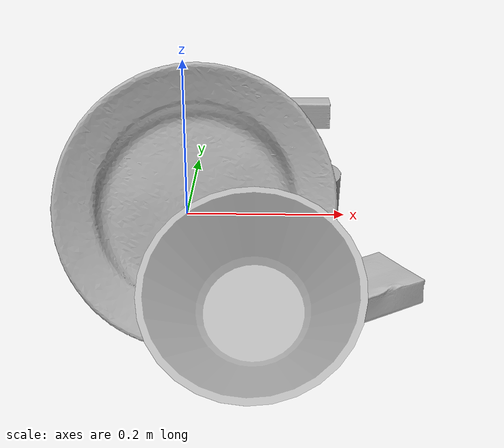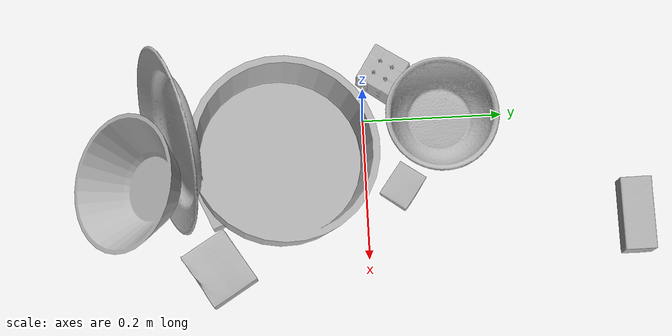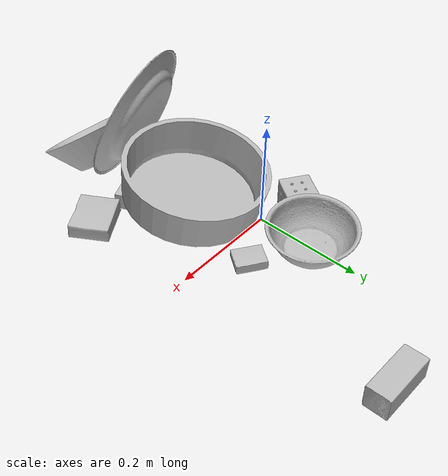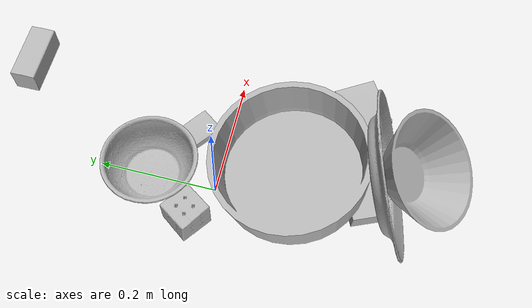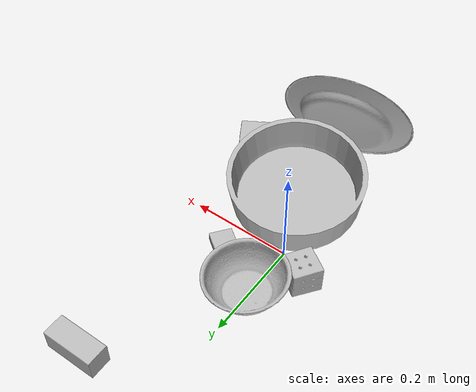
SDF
<sdf version="1.4">
  <world name="default">
    <light name="light1" type="point">
      <pose>0 0 1 0 0 0</pose>
      <diffuse>3 3 3 1</diffuse>
      <specular>3 3 3 1</specular>
    </light>
    <light name="light2" type="point">
      <pose>0 0.5 2 0 0 0</pose>
      <diffuse>1 1 1 1</diffuse>
      <specular>1 1 1 1</specular>
    </light>
    <light name="light3" type="point">
      <pose>0 0.5 2 0 0 0</pose>
      <diffuse>3 3 3 1</diffuse>
      <specular>3 3 3 1</specular>
    </light>
    <scene>
      <ambient>0.7 0.7 0.7</ambient>
    </scene>
    <model name="box1">
      <link name="link_box1">
        <collision name="default">
          <geometry>
            <mesh>
              <uri>model://gelatin_box/collision_meshes/collision.obj</uri>
              <scale>1.0 1.0 1.0</scale>
            </mesh>
          </geometry>
          <surface>
            <friction>
              <ode>
                <mu>0.5</mu>
                <mu2>0.5</mu2>
              </ode>
            </friction>
          <contact>
        <ode>
            <max_vel>0</max_vel>
            <min_depth>0.0001</min_depth>
            <kp>1e8</kp>
        </ode>
    </contact></surface>
        </collision>
        <visual name="default">
          <geometry>
            <mesh>
              <uri>model://gelatin_box/visual_meshes/visual.dae</uri>
              <scale>1.0 1.0 1.0</scale>
            </mesh>
          </geometry>
        </visual>
        <inertial>
          <mass>0.1979130208492279</mass>
          <pose>0.0004319618456065655 0.00011156871914863586 -0.0003640321083366871 -0.0010503722055948273 -0.004755818222760974 0.016440559471883928</pose>
          <inertia>
            <ixx>0.00013971045</ixx>
            <iyy>9.9794444e-05</iyy>
            <izz>0.00021267045</izz>
            <ixy>0</ixy>
            <ixz>0</ixz>
            <iyz>0</iyz>
          </inertia>
        </inertial>
      </link>
      <pose>0.20424510538578033 -0.21176397800445557 0.015168317593634129 0.005596602167692064 -0.007303778715009675 -1.0251202529471215</pose>
    </model>
    <model name="box11">
      <link name="link_box11">
        <collision name="default">
          <geometry>
            <mesh>
              <uri>model://sugar_box/collision_meshes/collision.obj</uri>
              <scale>0.5 0.5 0.5</scale>
            </mesh>
          </geometry>
          <surface>
            <friction>
              <ode>
                <mu>0.5</mu>
                <mu2>0.5</mu2>
              </ode>
            </friction>
          <contact>
        <ode>
            <max_vel>0</max_vel>
            <min_depth>0.0001</min_depth>
            <kp>1e8</kp>
        </ode>
    </contact></surface>
        </collision>
        <visual name="default">
          <geometry>
            <mesh>
              <uri>model://sugar_box/visual_meshes/visual.dae</uri>
              <scale>0.5 0.5 0.5</scale>
            </mesh>
          </geometry>
        </visual>
        <inertial>
          <mass>0.10992158949375153</mass>
          <pose>0.0005171863595023751 1.924554817378521e-05 -0.00018182402709499002 -0.00040462650409139634 0.0010506636387973133 0.002615378555960767</pose>
          <inertia>
            <ixx>2.2896586e-05</ixx>
            <iyy>7.400649e-05</iyy>
            <izz>8.8594585e-05</izz>
            <ixy>0</ixy>
            <ixz>0</ixz>
            <iyz>0</iyz>
          </inertia>
        </inertial>
      </link>
      <pose>0.07044650614261627 -0.16406066715717316 0.012057025916874409 -0.06807651903360216 -0.006778418688273786 0.4704140461810547</pose>
    </model>
    <model name="box2">
      <link name="link_box2">
        <collision name="default">
          <geometry>
            <mesh>
              <uri>model://jenga/collision_meshes/collision.obj</uri>
              <scale>1.0 1.0 1.0</scale>
            </mesh>
          </geometry>
          <surface>
            <friction>
              <ode>
                <mu>0.5</mu>
                <mu2>0.5</mu2>
              </ode>
            </friction>
          <contact>
        <ode>
            <max_vel>0</max_vel>
            <min_depth>0.0001</min_depth>
            <kp>1e8</kp>
        </ode>
    </contact></surface>
        </collision>
        <visual name="default">
          <geometry>
            <mesh>
              <uri>model://jenga/visual_meshes/visual.dae</uri>
              <scale>1.0 1.0 1.0</scale>
            </mesh>
          </geometry>
        </visual>
        <inertial>
          <mass>0.12651896476745605</mass>
          <pose>-2.502855807051674e-07 -0.00010250010382151231 -4.0923401684267446e-05 0.0 -7.34215461761844e-07 0.0</pose>
          <inertia>
            <ixx>3.5010868e-05</ixx>
            <iyy>0.00023723267</iyy>
            <izz>0.00025326604</izz>
            <ixy>0</ixy>
            <ixz>0</ixz>
            <iyz>0</iyz>
          </inertia>
        </inertial>
      </link>
      <pose>0.07107705622911453 -0.2242247462272644 0.014993858523666859 0.0005358474115784801 3.289969795084348e-05 0.4114633194264771</pose>
    </model>
    <model name="box21">
      <link name="link_box21">
        <collision name="default">
          <geometry>
            <mesh>
              <uri>model://wood_block/collision_meshes/collision.obj</uri>
              <scale>0.5 0.5 0.5</scale>
            </mesh>
          </geometry>
          <surface>
            <friction>
              <ode>
                <mu>0.5</mu>
                <mu2>0.5</mu2>
              </ode>
            </friction>
          <contact>
        <ode>
            <max_vel>0</max_vel>
            <min_depth>0.0001</min_depth>
            <kp>1e8</kp>
        </ode>
    </contact></surface>
        </collision>
        <visual name="default">
          <geometry>
            <mesh>
              <uri>model://wood_block/visual_meshes/visual.dae</uri>
              <scale>0.5 0.5 0.5</scale>
            </mesh>
          </geometry>
        </visual>
        <inertial>
          <mass>0.17952100932598114</mass>
          <pose>-2.906657982748584e-06 -0.00028540476341731846 0.00013204291462898254 -0.052208472466385096 -0.005192695659959234 -0.0068613786899108485</pose>
          <inertia>
            <ixx>6.0056565e-05</ixx>
            <iyy>0.0001897187</iyy>
            <izz>0.00018900905</izz>
            <ixy>0</ixy>
            <ixz>0</ixz>
            <iyz>0</iyz>
          </inertia>
        </inertial>
      </link>
      <pose>0.15925537049770355 0.377961128950119 0.022629262879490852 -0.00520844033220294 0.005718670183622919 0.004857834704999453</pose>
    </model>
    <model name="box3">
      <link name="link_box3">
        <collision name="default">
          <geometry>
            <mesh>
              <uri>model://rubiks_cube/collision_meshes/collision.obj</uri>
              <scale>1.0 1.0 1.0</scale>
            </mesh>
          </geometry>
          <surface>
            <friction>
              <ode>
                <mu>0.5</mu>
                <mu2>0.5</mu2>
              </ode>
            </friction>
          <contact>
        <ode>
            <max_vel>0</max_vel>
            <min_depth>0.0001</min_depth>
            <kp>1e8</kp>
        </ode>
    </contact></surface>
        </collision>
        <visual name="default">
          <geometry>
            <mesh>
              <uri>model://rubiks_cube/visual_meshes/visual.dae</uri>
              <scale>1.0 1.0 1.0</scale>
            </mesh>
          </geometry>
        </visual>
        <inertial>
          <mass>0.2539031207561493</mass>
          <pose>2.6721041649580002e-05 5.2569666877388954e-05 -7.264316082000732e-06 -0.05467208428881645 -0.09814040742269707 -0.034455380154792534</pose>
          <inertia>
            <ixx>0.00014029852</ixx>
            <iyy>0.00013964424</iyy>
            <izz>0.00014146113</izz>
            <ixy>0</ixy>
            <ixz>0</ixz>
            <iyz>0</iyz>
          </inertia>
        </inertial>
      </link>
      <pose>-0.06023848429322243 0.03213268518447876 0.02867894060909748 -5.363533073520409e-06 -2.761413383877553e-06 2.548273706752866</pose>
    </model>
    <model name="box31">
      <link name="link_box31">
        <collision name="default">
          <geometry>
            <mesh>
              <uri>model://pudding_box/collision_meshes/collision.obj</uri>
              <scale>0.5 0.5 0.5</scale>
            </mesh>
          </geometry>
          <surface>
            <friction>
              <ode>
                <mu>0.5</mu>
                <mu2>0.5</mu2>
              </ode>
            </friction>
          <contact>
        <ode>
            <max_vel>0</max_vel>
            <min_depth>0.0001</min_depth>
            <kp>1e8</kp>
        </ode>
    </contact></surface>
        </collision>
        <visual name="default">
          <geometry>
            <mesh>
              <uri>model://pudding_box/visual_meshes/visual.dae</uri>
              <scale>0.5 0.5 0.5</scale>
            </mesh>
          </geometry>
        </visual>
        <inertial>
          <mass>0.030597222968935966</mass>
          <pose>0.00024474109522998333 0.00040339428232982755 -0.00025944135268218815 0.005213101792545572 -0.006603798718575614 0.020079825159656634</pose>
          <inertia>
            <ixx>8.6471455e-06</ixx>
            <iyy>5.8178607e-06</iyy>
            <izz>1.2769769e-05</izz>
            <ixy>0</ixy>
            <ixz>0</ixz>
            <iyz>0</iyz>
          </inertia>
        </inertial>
      </link>
      <pose>0.09893888980150223 0.05270541086792946 0.009862903505563736 0.022348793067975135 -0.011391534879245657 0.9425628449551012</pose>
    </model>
    <model name="plate1">
      <link name="link_plate1">
        <collision name="default">
          <geometry>
            <mesh>
              <uri>model://pan_tefal/collision_meshes/collision.obj</uri>
              <scale>1.0 1.0 1.0</scale>
            </mesh>
          </geometry>
          <surface>
            <friction>
              <ode>
                <mu>0.5</mu>
                <mu2>0.5</mu2>
              </ode>
            </friction>
          <contact>
        <ode>
            <max_vel>0</max_vel>
            <min_depth>0.0001</min_depth>
            <kp>1e8</kp>
        </ode>
    </contact></surface>
        </collision>
        <visual name="default">
          <geometry>
            <mesh>
              <uri>model://pan_tefal/visual_meshes/visual.dae</uri>
              <scale>1.0 1.0 1.0</scale>
            </mesh>
          </geometry>
        </visual>
        <inertial>
          <mass>1.6321053504943848</mass>
          <pose>-0.00018001697026193142 3.279276279499754e-05 -0.00851493887603283 0.0008190355512640809 -0.00033013448733331557 -0.33186498661790637</pose>
          <inertia>
            <ixx>0.011266344</ixx>
            <iyy>0.011338978</iyy>
            <izz>0.02073917</izz>
            <ixy>0</ixy>
            <ixz>0</ixz>
            <iyz>0</iyz>
          </inertia>
        </inertial>
      </link>
      <pose>0.05221278965473175 -0.11436557024717331 0.055110812187194824 0.1283121812577254 -0.08894983044529305 -2.13943502099445</pose>
    </model>
    <model name="bowl1">
      <link name="link_bowl1">
        <collision name="default">
          <geometry>
            <mesh>
              <uri>model://bowl/collision_meshes/collision.obj</uri>
              <scale>1.0 1.0 1.0</scale>
            </mesh>
          </geometry>
          <surface>
            <friction>
              <ode>
                <mu>0.5</mu>
                <mu2>0.5</mu2>
              </ode>
            </friction>
          <contact>
        <ode>
            <max_vel>0</max_vel>
            <min_depth>0.0001</min_depth>
            <kp>1e8</kp>
        </ode>
    </contact></surface>
        </collision>
        <visual name="default">
          <geometry>
            <mesh>
              <uri>model://bowl/visual_meshes/visual.dae</uri>
              <scale>1.0 1.0 1.0</scale>
            </mesh>
          </geometry>
        </visual>
        <inertial>
          <mass>0.08853479474782944</mass>
          <pose>0.0002044534485321492 -0.0010302085429430008 -0.0008042657864280045 -0.015764086220495594 0.014546762208611713 0.7140398935341641</pose>
          <inertia>
            <ixx>0.00020337135</ixx>
            <iyy>0.00019882726</iyy>
            <izz>0.00034214073</izz>
            <ixy>0</ixy>
            <ixz>0</ixz>
            <iyz>0</iyz>
          </inertia>
        </inertial>
      </link>
      <pose>0.004832043778151274 0.111437126994133 0.030160527676343918 -0.05411098098255076 -0.007730158887057244 -1.0002447021503567</pose>
    </model>
    <model name="plate2">
      <link name="link_plate2">
        <collision name="default">
          <geometry>
            <mesh>
              <uri>model://plate/collision_meshes/collision.obj</uri>
              <scale>1.0 1.0 1.0</scale>
            </mesh>
          </geometry>
          <surface>
            <friction>
              <ode>
                <mu>0.5</mu>
                <mu2>0.5</mu2>
              </ode>
            </friction>
          <contact>
        <ode>
            <max_vel>0</max_vel>
            <min_depth>0.0001</min_depth>
            <kp>1e8</kp>
        </ode>
    </contact></surface>
        </collision>
        <visual name="default">
          <geometry>
            <mesh>
              <uri>model://plate/visual_meshes/visual.dae</uri>
              <scale>1.0 1.0 1.0</scale>
            </mesh>
          </geometry>
        </visual>
        <inertial>
          <mass>0.10531359910964966</mass>
          <pose>-0.0006044624024070799 0.00027825951110571623 -0.001056199660524726 0.0022187923451504944 -0.0032254757952566134 0.45260828030698763</pose>
          <inertia>
            <ixx>0.00049265905</ixx>
            <iyy>0.00048794702</iyy>
            <izz>0.0009635677</izz>
            <ixy>0</ixy>
            <ixz>0</ixz>
            <iyz>0</iyz>
          </inertia>
        </inertial>
      </link>
      <pose>0.037359680980443954 -0.2574547827243805 0.12185894697904587 -1.2674812641334796 0.010930039759454918 -2.9100852449336894</pose>
    </model>
    <model name="bowl2">
      <link name="link_bowl2">
        <collision name="default">
          <geometry>
            <mesh>
              <uri>model://bowl_a/collision_meshes/collision.obj</uri>
              <scale>1.0 1.0 1.0</scale>
            </mesh>
          </geometry>
          <surface>
            <friction>
              <ode>
                <mu>0.5</mu>
                <mu2>0.5</mu2>
              </ode>
            </friction>
          <contact>
        <ode>
            <max_vel>0</max_vel>
            <min_depth>0.0001</min_depth>
            <kp>1e8</kp>
        </ode>
    </contact></surface>
        </collision>
        <visual name="default">
          <geometry>
            <mesh>
              <uri>model://bowl_a/visual_meshes/visual.dae</uri>
              <scale>1.0 1.0 1.0</scale>
            </mesh>
          </geometry>
        </visual>
        <inertial>
          <mass>0.4180941581726074</mass>
          <pose>0.000278673687716946 4.731199442176148e-05 -0.0013765294570475817 -0.0009805326545729344 -0.001093820496942545 -0.19124076645491772</pose>
          <inertia>
            <ixx>0.0011903334</ixx>
            <iyy>0.0011976411</iyy>
            <izz>0.0021170534</izz>
            <ixy>0</ixy>
            <ixz>0</ixz>
            <iyz>0</iyz>
          </inertia>
        </inertial>
      </link>
      <pose>0.08783743530511856 -0.31713494658470154 0.05876976251602173 -0.5433475144201503 -0.41543147732681546 2.4885613926904924</pose>
    </model>
  <physics type="ode">
      <max_contacts>50</max_contacts>
      <ode>
        <solver>
          <type>quick</type>
          <iters>75</iters>
        </solver>
        <constraints>
          <contact_max_correcting_vel>0</contact_max_correcting_vel>
          <contact_surface_layer>0</contact_surface_layer>
        </constraints>
      </ode>
    </physics></world>
</sdf>
